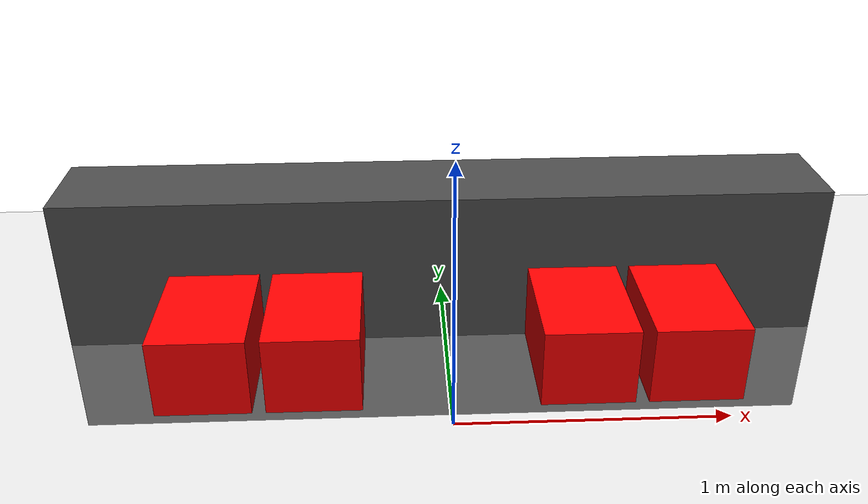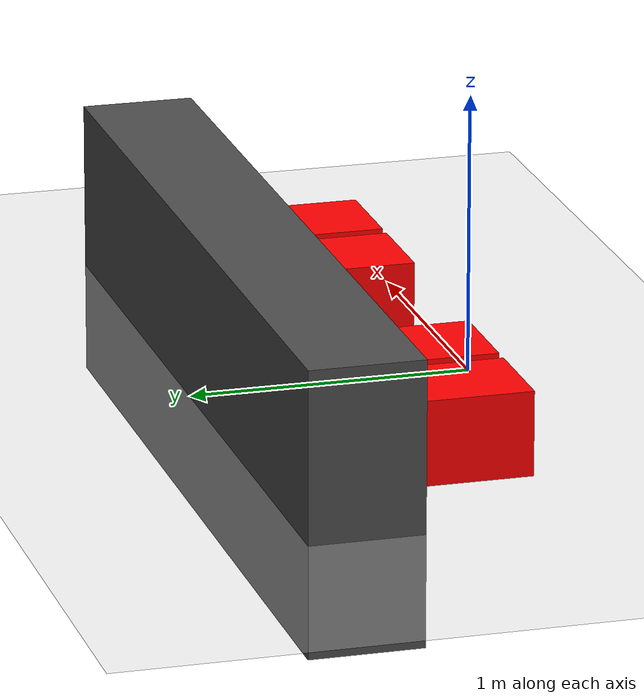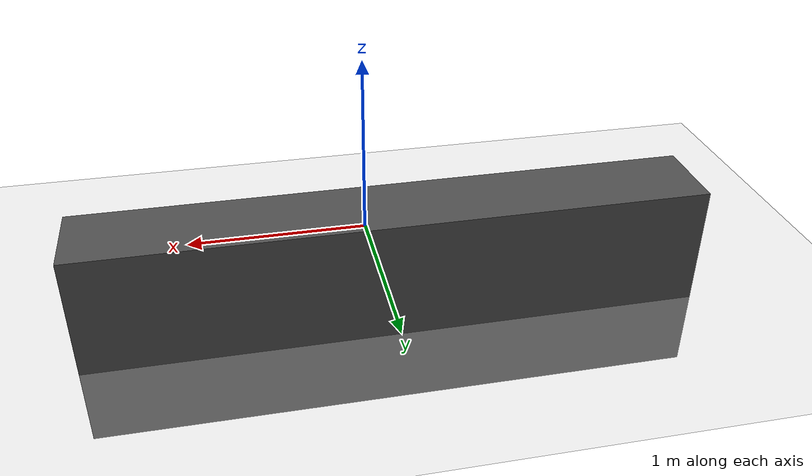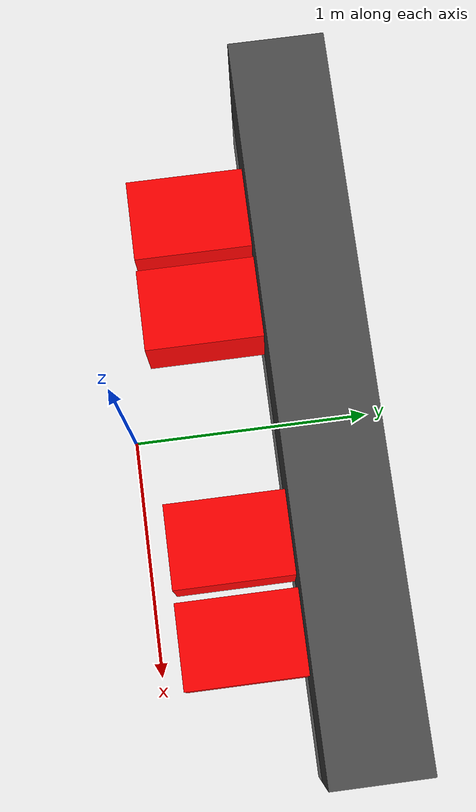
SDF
<?xml version="1.0" ?>
<sdf version="1.6">
  <world name="parking_world">

    <plugin
      filename="gz-sim-physics-system"
      name="gz::sim::systems::Physics">
    </plugin>
    <plugin
      filename="gz-sim-user-commands-system"
      name="gz::sim::systems::UserCommands">
    </plugin>
    <plugin
      filename="gz-sim-scene-broadcaster-system"
      name="gz::sim::systems::SceneBroadcaster">
    </plugin>

    <light type="directional" name="sun">
      <cast_shadows>true</cast_shadows>
      <pose>0 0 10 0 0 0</pose>
      <diffuse>0.8 0.8 0.8 1</diffuse>
      <specular>0.2 0.2 0.2 1</specular>
      <direction>-0.5 0.1 -0.9</direction>
    </light>

    <model name="ground_plane">
      <static>true</static>
      <link name="link_ground">
        <collision name="collision_ground">
          <geometry>
            <plane>
              <normal>0 0 1</normal>
              <size>100 100</size>
            </plane>
          </geometry>
        </collision>
        <visual name="visual_ground">
          <geometry>
            <plane>
              <normal>0 0 1</normal>
              <size>100 100</size>
            </plane>
          </geometry>
          <material>
            <ambient>0.8 0.8 0.8 1</ambient>
            <diffuse>0.8 0.8 0.8 1</diffuse>
            <specular>0.8 0.8 0.8 1</specular>
          </material>
        </visual>
      </link>
    </model>

    <model name="banqueta">
      <static>true</static>
      <pose>0 0.8 0.1 0 0 0</pose>
      <link name="link_banqueta">
        <collision name="collision_banqueta">
          <geometry>
            <box>
              <size>3.0 0.4 1.0</size>
            </box>
          </geometry>
        </collision>
        <visual name="visual_banqueta">
          <geometry>
            <box>
              <size>3.0 0.4 1.0</size>
            </box>
          </geometry>
          <material>
            <ambient>0.3 0.3 0.3 1</ambient>
            <diffuse>0.3 0.3 0.3 1</diffuse>
          </material>
        </visual>
      </link>
    </model>

    <model name="box_rear">
      <pose>-0.9 0.35 0.15 0 0 1.57</pose>
      <static>true</static>
      <link name="link_box_rear">
        <collision name="collision_box_rear">
          <geometry>
            <box>
              <size>0.5 0.35 0.3</size>
            </box>
          </geometry>
        </collision>
        <visual name="visual_box_rear">
          <geometry>
            <box>
              <size>0.5 0.35 0.3</size>
            </box>
          </geometry>
          <material>
            <ambient>1 0 0 1</ambient>
            <diffuse>1 0 0 1</diffuse>
          </material>
        </visual>
      </link>
    </model>

    <model name="box_mid_limit_back">
      <pose>-0.5 0.35 0.15 0 0 1.57</pose>
      <static>true</static>
      <link name="link_box_mid_back">
        <collision name="collision_box_mid_back">
          <geometry>
            <box>
              <size>0.5 0.35 0.3</size>
            </box>
          </geometry>
        </collision>
        <visual name="visual_box_mid_back">
          <geometry>
            <box>
              <size>0.5 0.35 0.3</size>
            </box>
          </geometry>
          <material>
            <ambient>1 0 0 1</ambient>
            <diffuse>1 0 0 1</diffuse>
          </material>
        </visual>
      </link>
    </model>

    <model name="box_mid_limit_front">
      <pose>0.5 0.35 0.15 0 0 1.57</pose>
      <static>true</static>
      <link name="link_box_mid_front">
        <collision name="collision_box_mid_front">
          <geometry>
            <box>
              <size>0.5 0.35 0.3</size>
            </box>
          </geometry>
        </collision>
        <visual name="visual_box_mid_front">
          <geometry>
            <box>
              <size>0.5 0.35 0.3</size>
            </box>
          </geometry>
          <material>
            <ambient>1 0 0 1</ambient>
            <diffuse>1 0 0 1</diffuse>
          </material>
        </visual>
      </link>
    </model>

    <model name="box_front">
      <pose>0.9 0.35 0.15 0 0 1.57</pose>
      <static>true</static>
      <link name="link_box_front">
        <collision name="collision_box_front">
          <geometry>
            <box>
              <size>0.5 0.35 0.3</size>
            </box>
          </geometry>
        </collision>
        <visual name="visual_box_front">
          <geometry>
            <box>
              <size>0.5 0.35 0.3</size>
            </box>
          </geometry>
          <material>
            <ambient>1 0 0 1</ambient>
            <diffuse>1 0 0 1</diffuse>
          </material>
        </visual>
      </link>
    </model>

  </world>
</sdf>
